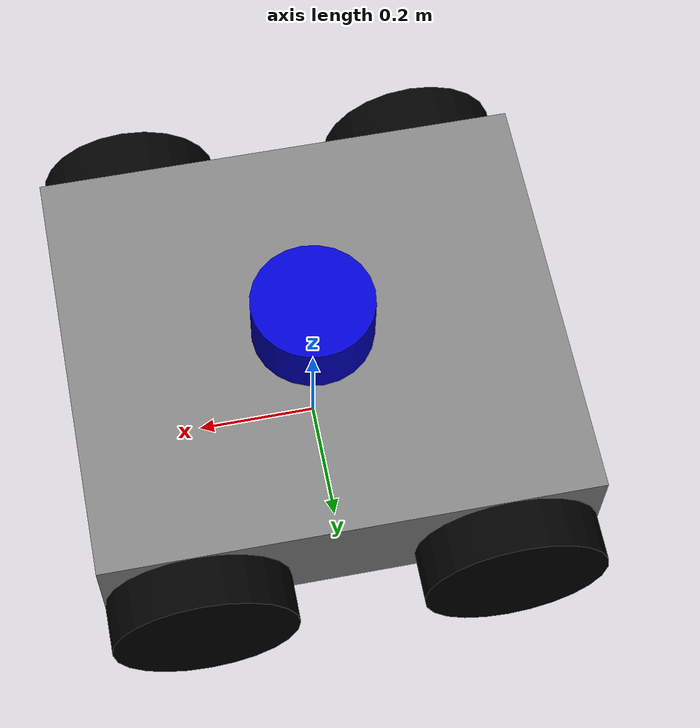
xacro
<?xml version="1.0"?>
<robot name="dhpr" xmlns:xacro="http://ros.org/wiki/xacro">
  <!-- Includes -->
  <xacro:include filename="$(find basic_urdf)/description/dhpr.gazebo" />
  <xacro:include filename="$(find basic_urdf)/description/materials.xacro" />
  <!-- Macros -->
  <xacro:macro name="solid_cuboid_inertia" params="m l w h">
    <inertia ixx="${(m*(w*w+h*h))/12}" ixy="0" ixz="0" iyy="${(m*(l*l+h*h))/12}" iyz="0"
      izz="${(m*(l*l+w*w))/12}" />
  </xacro:macro>
  <!-- BaseFootprint -->
  <link name="base_footprint"></link>
  <!-- Joint BaseFootprint -> BaseLink -->
  <joint name="base_footprint_joint" type="fixed">
    <origin xyz="0 0 0.1" rpy="0 0 0" />
    <parent link="base_footprint" />
    <child link="base_link" />
  </joint>
  <!-- BaseLink -->
  <link name='base_link'>
    <pose>0 0 0.1 0 0 0</pose>
    <inertial>
      <mass value="15.0" />
      <origin xyz="0 0 0.1" rpy=" 0 0 0" />
      <xacro:solid_cuboid_inertia m="15.0" l="0.8" w="0.7" h="0.2" />
    </inertial>
    <collision name='collision'>
      <origin xyz="0 0 0.1" rpy=" 0 0 0" />
      <geometry>
        <box size="0.8 0.7 0.2" />
      </geometry>
    </collision>
    <visual name='base_link_visual'>
      <material name="grey" />
      <origin xyz="0 0 0.1" rpy=" 0 0 0" />
      <geometry>
        <box size="0.8 0.7 0.2" />
      </geometry>
    </visual>
  </link>
  <!-- Joint BaseLink -> FrontLeftWheel -->
  <joint type="continuous" name="front_left_wheel_joint">
    <origin xyz="0.25 0.38 0.05" rpy="-1.5707963267948966 0 0" />
    <child link="front_left_wheel" />
    <parent link="base_link" />
    <axis xyz="0 0 1" />
    <limit effort="100" velocity="10"/>
    <dynamics damping="1.0" friction="1.0" />
  </joint>
  <!-- FrontLeftWheel -->
  <link name='front_left_wheel'>
    <inertial>
      <mass value="5.0" />
      <origin xyz="0 0 0" rpy="0 0 0" />
      <inertia ixx="0.014" ixy="0" ixz="0" iyy="0.014" iyz="0" izz="0.025" />
    </inertial>
    <collision>
      <origin xyz="0 0 0" rpy="0 0 0" />
      <geometry>
        <cylinder radius="0.15" length="0.10" />
      </geometry>
    </collision>
    <visual name='front_left_wheel_visual'>
      <material name="black" />
      <origin xyz="0 0 0" rpy="0 0 0" />
      <geometry>
        <cylinder radius="0.15" length="0.10" />
      </geometry>
    </visual>
  </link>
  <!-- Joint BaseLink -> FrontRightWheel -->
  <joint type="continuous" name="front_right_wheel_joint">
    <origin xyz="0.25 -0.38 0.05" rpy="1.5707963267948966 0 0" />
    <child link="front_right_wheel" />
    <parent link="base_link" />
    <axis xyz="0 0 -1" />
    <limit effort="100" velocity="10"/>
    <dynamics damping="1.0" friction="1.0" />
  </joint>
  <!-- FrontRightWheel -->
  <link name='front_right_wheel'>
    <inertial>
      <mass value="5.0" />
      <origin xyz="0 0 0" rpy="0 0 0" />
      <inertia ixx="0.014" ixy="0" ixz="0" iyy="0.014" iyz="0" izz="0.025" />
    </inertial>
    <collision>
      <origin xyz="0 0 0" rpy="0 0 0" />
      <geometry>
        <cylinder radius="0.15" length="0.10" />
      </geometry>
    </collision>
    <visual name='front_right_wheel_visual'>
      <material name="black" />
      <origin xyz="0 0 0" rpy="0 0 0" />
      <geometry>
        <cylinder radius="0.15" length="0.10" />
      </geometry>
    </visual>
  </link>
  <!-- Joint BaseLink -> RearLeftWheel -->
  <joint type="continuous" name="rear_left_wheel_joint">
    <origin xyz="-0.25 0.38 0.05" rpy="-1.5707963267948966 0 0" />
    <child link="rear_left_wheel" />
    <parent link="base_link" />
    <axis xyz="0 0 1" />
    <limit effort="100" velocity="10"/>
    <dynamics damping="1.0" friction="1.0" />
  </joint>
  <!-- LeftWheel -->
  <link name='rear_left_wheel'>
    <inertial>
      <mass value="5.0" />
      <origin xyz="0 0 0" rpy="0 0 0" />
      <inertia ixx="0.014" ixy="0" ixz="0" iyy="0.014" iyz="0" izz="0.025" />
    </inertial>
    <collision>
      <origin xyz="0 0 0" rpy="0 0 0" />
      <geometry>
        <cylinder radius="0.15" length="0.10" />
      </geometry>
    </collision>
    <visual name='rear_left_wheel_visual'>
      <material name="black" />
      <origin xyz="0 0 0" rpy="0 0 0" />
      <geometry>
        <cylinder radius="0.15" length="0.10" />
      </geometry>
    </visual>
  </link>
  <!-- Joint BaseLink -> RearRightWheel -->
  <joint type="continuous" name="rear_right_wheel_joint">
    <origin xyz="-0.25 -0.38 0.05" rpy="1.5707963267948966 0 0" />
    <child link="rear_right_wheel" />
    <parent link="base_link" />
    <axis xyz="0 0 -1" />
    <limit effort="100" velocity="10"/>
    <dynamics damping="1.0" friction="1.0" />
  </joint>
  <!-- RightWheel -->
  <link name='rear_right_wheel'>
    <inertial>
      <mass value="5.0" />
      <origin xyz="0 0 0" rpy="0 0 0" />
      <inertia ixx="0.014" ixy="0" ixz="0" iyy="0.014" iyz="0" izz="0.025" />
    </inertial>
    <collision>
      <origin xyz="0 0 0" rpy="0 0 0" />
      <geometry>
        <cylinder radius="0.15" length="0.10" />
      </geometry>
    </collision>
    <visual name='rear_right_wheel_visual'>
      <material name="black" />
      <origin xyz="0 0 0" rpy="0 0 0" />
      <geometry>
        <cylinder radius="0.15" length="0.10" />
      </geometry>
    </visual>
  </link>
  <!-- Joint BaseLink -> Lidar -->
  <joint type="fixed" name="lidar_joint">
    <origin xyz="0 0 0.25" rpy="0 0 0" />
    <child link="laser_frame" />
    <parent link="base_link" />
  </joint>
  <!-- Lidar -->
  <link name='laser_frame'>
    <inertial>
      <mass value="0.3" />
      <origin xyz="0 0 0" rpy="0 0 0" />
      <inertia ixx="0.0013125" ixy="0" ixz="0" iyy="0.0013125" iyz="0" izz="0.0015" />
    </inertial>
    <collision>
      <origin xyz="0 0 0" rpy="0 0 0" />
      <geometry>
        <cylinder radius="0.10" length="0.10" />
      </geometry>
    </collision>
    <visual name='laser_frame_visual'>
      <material name="blue" />
      <origin xyz="0 0 0" rpy="0 0 0" />
      <geometry>
        <cylinder radius="0.10" length="0.10" />
      </geometry>
    </visual>
  </link>
</robot>

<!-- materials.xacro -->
<robot>
  <!-- Materials -->
  <material name="black">
    <color rgba="0.0 0.0 0.0 1.0"/>
  </material>
  <material name="white">
    <color rgba="1.0 1.0 1.0 1.0"/>
  </material>
  <material name="red">
    <color rgba="0.8 0.0 0.0 1.0"/>
  </material>
  <material name="blue">
    <color rgba="0.0 0.0 0.8 1.0"/>
  </material>
  <material name="green">
    <color rgba="0.0 0.8 0.0 1.0"/>
  </material>
  <material name="grey">
    <color rgba="0.5 0.5 0.5 1.0"/>
  </material>
  <material name="orange">
    <color rgba="${255/255} ${108/255} ${10/255} 1.0"/>
  </material>
  <material name="brown">
    <color rgba="${222/255} ${207/255} ${195/255} 1.0"/>
  </material>
</robot>
